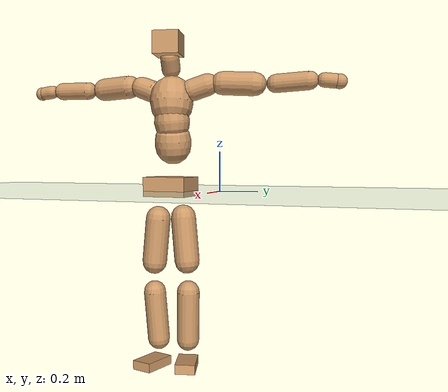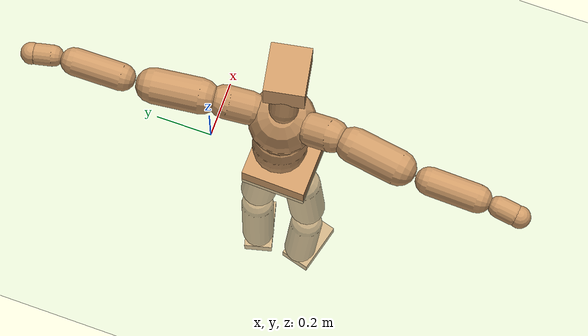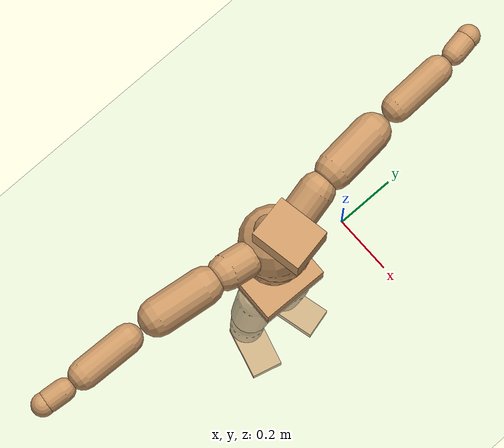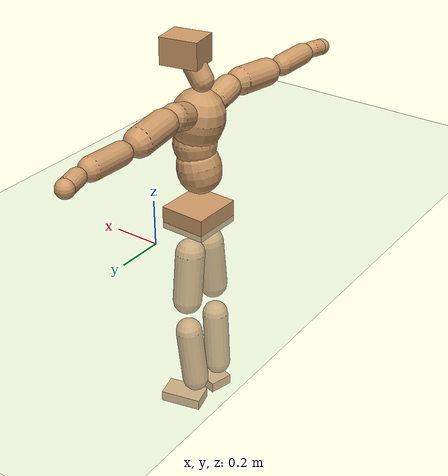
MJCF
<mujoco model="humanoid">
  <compiler coordinate="local" angle="radian"/>
  <default>
    <joint damping="0.0" armature="0.01" stiffness="0.0" limited="true"/>
    <geom conaffinity="1" condim="3" contype="7" margin="0.001" rgba="0.8 0.6 .4 1"/>
  </default>
  <asset>
    <texture type="skybox" builtin="gradient" rgb1=".4 .5 .6" rgb2="0 0 0" width="100" height="100"/>
    <texture builtin="flat" height="1278" mark="cross" markrgb="1 1 1" name="texgeom" random="0.01" rgb1="0.8 0.6 0.4" rgb2="0.8 0.6 0.4" type="cube" width="127"/>
    <texture builtin="checker" height="100" name="texplane" rgb1="0 0 0" rgb2="0.8 0.8 0.8" type="2d" width="100"/>
    <material name="MatPlane" reflectance="0.5" shininess="1" specular="1" texrepeat="60 60" texture="texplane"/>
    <material name="geom" texture="texgeom" texuniform="true"/>
  </asset>
  <worldbody>
    <light cutoff="100" diffuse="1 1 1" dir="-0 0 -1.3" directional="true" exponent="1" pos="0 0 1.3" specular=".1 .1 .1"/>
    <geom conaffinity="1" condim="3" name="floor" pos="0 0 0" rgba="0.8 0.9 0.8 1" size="100 100 .2" type="plane" material="MatPlane"/>
    <body name="Pelvis" pos="-0.0037 -0.2757 0.0285">
      <freejoint name="Pelvis"/>
      <geom type="box" contype="1" conaffinity="1" density="500" pos="-0.0112 0.0003 -0.0086" size="0.1036 0.1148 0.051" quat="0.9999 0.0000 0.0000 -0.0128" name="Pelvis"/>
      <body name="L_Hip" pos="-0.0171 0.0618 -0.0917">
        <joint name="L_Hip_x" type="hinge" pos="0 0 0" axis="1 0 0" stiffness="800" damping="80" armature="0.02" range="-180.0000 180.0000"/>
        <joint name="L_Hip_y" type="hinge" pos="0 0 0" axis="0 1 0" stiffness="800" damping="80" armature="0.02" range="-180.0000 180.0000"/>
        <joint name="L_Hip_z" type="hinge" pos="0 0 0" axis="0 0 1" stiffness="800" damping="80" armature="0.02" range="-180.0000 180.0000"/>
        <geom type="capsule" contype="1" conaffinity="1" density="500" fromto="0.0007 0.0073 -0.0778 0.0027 0.0293 -0.3113" size="0.0657" name="L_Hip"/>
        <body name="L_Knee" pos="0.0034 0.0366 -0.3891">
          <joint name="L_Knee_x" type="hinge" pos="0 0 0" axis="1 0 0" stiffness="800" damping="80" armature="0.02" range="-180.0000 180.0000"/>
          <joint name="L_Knee_y" type="hinge" pos="0 0 0" axis="0 1 0" stiffness="800" damping="80" armature="0.02" range="-180.0000 180.0000"/>
          <joint name="L_Knee_z" type="hinge" pos="0 0 0" axis="0 0 1" stiffness="800" damping="80" armature="0.02" range="-180.0000 180.0000"/>
          <geom type="capsule" contype="1" conaffinity="1" density="500" fromto="-0.0089 -0.0036 -0.0884 -0.0355 -0.0145 -0.3536" size="0.06" name="L_Knee"/>
          <body name="L_Ankle" pos="-0.0444 -0.0181 -0.442">
            <joint name="L_Ankle_x" type="hinge" pos="0 0 0" axis="1 0 0" stiffness="800" damping="80" armature="0.02" range="-180.0000 180.0000"/>
            <joint name="L_Ankle_y" type="hinge" pos="0 0 0" axis="0 1 0" stiffness="800" damping="80" armature="0.02" range="-180.0000 180.0000"/>
            <joint name="L_Ankle_z" type="hinge" pos="0 0 0" axis="0 0 1" stiffness="800" damping="80" armature="0.02" range="-180.0000 180.0000"/>
            <geom type="box" contype="1" conaffinity="1" density="500" pos="0.0649 0.0165 -0.0311" size="0.0937 0.0529 0.0253" quat="0.9923 0.0000 0.0000 0.1239" name="L_Ankle"/>
            <body name="L_Toe" pos="0.1298 0.0329 -0.0621">
              <joint name="L_Toe_x" type="hinge" pos="0 0 0" axis="1 0 0" stiffness="500" damping="50" armature="0.02" range="-180.0000 180.0000"/>
              <joint name="L_Toe_y" type="hinge" pos="0 0 0" axis="0 1 0" stiffness="500" damping="50" armature="0.02" range="-180.0000 180.0000"/>
              <joint name="L_Toe_z" type="hinge" pos="0 0 0" axis="0 0 1" stiffness="500" damping="50" armature="0.02" range="-180.0000 180.0000"/>
              <geom type="box" contype="1" conaffinity="1" density="500" pos="0.0000 0.0000 0.0313" size="0.0011 0.0026 0.0013" quat="0.9916 0.0000 0.0000 0.1291" name="L_Toe"/>
            </body>
          </body>
        </body>
      </body>
      <body name="R_Hip" pos="-0.0106 -0.0652 -0.1019">
        <joint name="R_Hip_x" type="hinge" pos="0 0 0" axis="1 0 0" stiffness="800" damping="80" armature="0.02" range="-180.0000 180.0000"/>
        <joint name="R_Hip_y" type="hinge" pos="0 0 0" axis="0 1 0" stiffness="800" damping="80" armature="0.02" range="-180.0000 180.0000"/>
        <joint name="R_Hip_z" type="hinge" pos="0 0 0" axis="0 0 1" stiffness="800" damping="80" armature="0.02" range="-180.0000 180.0000"/>
        <geom type="capsule" contype="1" conaffinity="1" density="500" fromto="-0.0019 -0.0080 -0.0786 -0.0076 -0.0319 -0.3145" size="0.0656" name="R_Hip"/>
        <body name="R_Knee" pos="-0.0095 -0.0398 -0.3932">
          <joint name="R_Knee_x" type="hinge" pos="0 0 0" axis="1 0 0" stiffness="800" damping="80" armature="0.02" range="-180.0000 180.0000"/>
          <joint name="R_Knee_y" type="hinge" pos="0 0 0" axis="0 1 0" stiffness="800" damping="80" armature="0.02" range="-180.0000 180.0000"/>
          <joint name="R_Knee_z" type="hinge" pos="0 0 0" axis="0 0 1" stiffness="800" damping="80" armature="0.02" range="-180.0000 180.0000"/>
          <geom type="capsule" contype="1" conaffinity="1" density="500" fromto="-0.0080 0.0045 -0.0876 -0.0319 0.0179 -0.3503" size="0.0595" name="R_Knee"/>
          <body name="R_Ankle" pos="-0.0399 0.0224 -0.4379">
            <joint name="R_Ankle_x" type="hinge" pos="0 0 0" axis="1 0 0" stiffness="800" damping="80" armature="0.02" range="-180.0000 180.0000"/>
            <joint name="R_Ankle_y" type="hinge" pos="0 0 0" axis="0 1 0" stiffness="800" damping="80" armature="0.02" range="-180.0000 180.0000"/>
            <joint name="R_Ankle_z" type="hinge" pos="0 0 0" axis="0 0 1" stiffness="800" damping="80" armature="0.02" range="-180.0000 180.0000"/>
            <geom type="box" contype="1" conaffinity="1" density="500" pos="0.0692 -0.0184 -0.0322" size="0.0949 0.055 0.0244" quat="0.9915 0.0000 0.0000 -0.1298" name="R_Ankle"/>
            <body name="R_Toe" pos="0.1385 -0.0369 -0.0645">
              <joint name="R_Toe_x" type="hinge" pos="0 0 0" axis="1 0 0" stiffness="500" damping="50" armature="0.02" range="-180.0000 180.0000"/>
              <joint name="R_Toe_y" type="hinge" pos="0 0 0" axis="0 1 0" stiffness="500" damping="50" armature="0.02" range="-180.0000 180.0000"/>
              <joint name="R_Toe_z" type="hinge" pos="0 0 0" axis="0 0 1" stiffness="500" damping="50" armature="0.02" range="-180.0000 180.0000"/>
              <geom type="box" contype="1" conaffinity="1" density="500" pos="0.0000 0.0000 0.0341" size="0.0012 0.0027 0.0013" quat="0.9926 0.0000 0.0000 -0.1214" name="R_Toe"/>
            </body>
          </body>
        </body>
      </body>
      <body name="Torso" pos="-0.0394 0.0051 0.1422">
        <joint name="Torso_x" type="hinge" pos="0 0 0" axis="1 0 0" stiffness="1000" damping="100" armature="0.02" range="-180.0000 180.0000"/>
        <joint name="Torso_y" type="hinge" pos="0 0 0" axis="0 1 0" stiffness="1000" damping="100" armature="0.02" range="-180.0000 180.0000"/>
        <joint name="Torso_z" type="hinge" pos="0 0 0" axis="0 0 1" stiffness="1000" damping="100" armature="0.02" range="-180.0000 180.0000"/>
        <geom type="capsule" contype="1" conaffinity="1" density="500" fromto="0.0196 0.0038 0.0942 0.0131 0.0025 0.0628" size="0.0953" name="Torso"/>
        <body name="Spine" pos="0.0327 0.0063 0.1569">
          <joint name="Spine_x" type="hinge" pos="0 0 0" axis="1 0 0" stiffness="1000" damping="100" armature="0.02" range="-180.0000 180.0000"/>
          <joint name="Spine_y" type="hinge" pos="0 0 0" axis="0 1 0" stiffness="1000" damping="100" armature="0.02" range="-180.0000 180.0000"/>
          <joint name="Spine_z" type="hinge" pos="0 0 0" axis="0 0 1" stiffness="1000" damping="100" armature="0.02" range="-180.0000 180.0000"/>
          <geom type="capsule" contype="1" conaffinity="1" density="500" fromto="0.0039 -0.0018 0.0381 0.0026 -0.0012 0.0254" size="0.0932" name="Spine"/>
          <body name="Chest" pos="0.0065 -0.003 0.0634">
            <joint name="Chest_x" type="hinge" pos="0 0 0" axis="1 0 0" stiffness="1000" damping="100" armature="0.02" range="-180.0000 180.0000"/>
            <joint name="Chest_y" type="hinge" pos="0 0 0" axis="0 1 0" stiffness="1000" damping="100" armature="0.02" range="-180.0000 180.0000"/>
            <joint name="Chest_z" type="hinge" pos="0 0 0" axis="0 0 1" stiffness="1000" damping="100" armature="0.02" range="-180.0000 180.0000"/>
            <geom type="capsule" contype="1" conaffinity="1" density="500" fromto="-0.0176 -0.0052 0.0944 -0.0117 -0.0035 0.0629" size="0.1141" name="Chest"/>
            <body name="Neck" pos="-0.0403 -0.0156 0.2275">
              <joint name="Neck_x" type="hinge" pos="0 0 0" axis="1 0 0" stiffness="500" damping="50" armature="0.02" range="-180.0000 180.0000"/>
              <joint name="Neck_y" type="hinge" pos="0 0 0" axis="0 1 0" stiffness="500" damping="50" armature="0.02" range="-180.0000 180.0000"/>
              <joint name="Neck_z" type="hinge" pos="0 0 0" axis="0 0 1" stiffness="500" damping="50" armature="0.02" range="-180.0000 180.0000"/>
              <geom type="capsule" contype="1" conaffinity="1" density="500" fromto="0.0107 0.0016 0.0179 0.0427 0.0065 0.0717" size="0.0493" name="Neck"/>
              <body name="Head" pos="0.0533 0.0081 0.0896">
                <joint name="Head_x" type="hinge" pos="0 0 0" axis="1 0 0" stiffness="500" damping="50" armature="0.02" range="-180.0000 180.0000"/>
                <joint name="Head_y" type="hinge" pos="0 0 0" axis="0 1 0" stiffness="500" damping="50" armature="0.02" range="-180.0000 180.0000"/>
                <joint name="Head_z" type="hinge" pos="0 0 0" axis="0 0 1" stiffness="500" damping="50" armature="0.02" range="-180.0000 180.0000"/>
                <geom type="box" contype="1" conaffinity="1" density="500" pos="0.0277 0.0051 0.0458" size="0.0832 0.0679 0.0575" quat="0.9959 0.0000 0.0000 0.0902" name="Head"/>
              </body>
            </body>
            <body name="L_Thorax" pos="-0.022 0.0783 0.123">
              <joint name="L_Thorax_x" type="hinge" pos="0 0 0" axis="1 0 0" stiffness="500" damping="50" armature="0.02" range="-180.0000 180.0000"/>
              <joint name="L_Thorax_y" type="hinge" pos="0 0 0" axis="0 1 0" stiffness="500" damping="50" armature="0.02" range="-180.0000 180.0000"/>
              <joint name="L_Thorax_z" type="hinge" pos="0 0 0" axis="0 0 1" stiffness="500" damping="50" armature="0.02" range="-180.0000 180.0000"/>
              <geom type="capsule" contype="1" conaffinity="1" density="500" fromto="-0.0051 0.0263 0.0087 -0.0203 0.1053 0.0349" size="0.0577" name="L_Thorax"/>
              <body name="L_Shoulder" pos="-0.0254 0.1317 0.0436">
                <joint name="L_Shoulder_x" type="hinge" pos="0 0 0" axis="1 0 0" stiffness="500" damping="50" armature="0.02" range="-720.0000 720.0000"/>
                <joint name="L_Shoulder_y" type="hinge" pos="0 0 0" axis="0 1 0" stiffness="500" damping="50" armature="0.02" range="-720.0000 720.0000"/>
                <joint name="L_Shoulder_z" type="hinge" pos="0 0 0" axis="0 0 1" stiffness="500" damping="50" armature="0.02" range="-720.0000 720.0000"/>
                <geom type="capsule" contype="1" conaffinity="1" density="500" fromto="-0.0051 0.0541 -0.0032 -0.0206 0.2164 -0.0129" size="0.0607" name="L_Shoulder"/>
                <body name="L_Elbow" pos="-0.0257 0.2705 -0.0161">
                  <joint name="L_Elbow_x" type="hinge" pos="0 0 0" axis="1 0 0" stiffness="500" damping="50" armature="0.02" range="-720.0000 720.0000"/>
                  <joint name="L_Elbow_y" type="hinge" pos="0 0 0" axis="0 1 0" stiffness="500" damping="50" armature="0.02" range="-720.0000 720.0000"/>
                  <joint name="L_Elbow_z" type="hinge" pos="0 0 0" axis="0 0 1" stiffness="500" damping="50" armature="0.02" range="-720.0000 720.0000"/>
                  <geom type="capsule" contype="1" conaffinity="1" density="500" fromto="-0.0015 0.0551 0.0025 -0.0059 0.2206 0.0102" size="0.047" name="L_Elbow"/>
                  <body name="L_Wrist" pos="-0.0074 0.2757 0.0127">
                    <joint name="L_Wrist_x" type="hinge" pos="0 0 0" axis="1 0 0" stiffness="300" damping="30" armature="0.02" range="-180.0000 180.0000"/>
                    <joint name="L_Wrist_y" type="hinge" pos="0 0 0" axis="0 1 0" stiffness="300" damping="30" armature="0.02" range="-180.0000 180.0000"/>
                    <joint name="L_Wrist_z" type="hinge" pos="0 0 0" axis="0 0 1" stiffness="300" damping="30" armature="0.02" range="-180.0000 180.0000"/>
                    <geom type="capsule" contype="1" conaffinity="1" density="500" fromto="-0.0032 0.0180 -0.0022 -0.0129 0.0721 -0.0087" size="0.0362" name="L_Wrist"/>
                    <body name="L_Hand" pos="-0.0161 0.0901 -0.0109">
                      <joint name="L_Hand_x" type="hinge" pos="0 0 0" axis="1 0 0" stiffness="300" damping="30" armature="0.02" range="-180.0000 180.0000"/>
                      <joint name="L_Hand_y" type="hinge" pos="0 0 0" axis="0 1 0" stiffness="300" damping="30" armature="0.02" range="-180.0000 180.0000"/>
                      <joint name="L_Hand_z" type="hinge" pos="0 0 0" axis="0 0 1" stiffness="300" damping="30" armature="0.02" range="-180.0000 180.0000"/>
                      <geom type="sphere" contype="1" conaffinity="1" density="500" size="0.0373" pos="0.0000 0.0000 0.0000" name="L_Hand"/>
                    </body>
                  </body>
                </body>
              </body>
            </body>
            <body name="R_Thorax" pos="-0.0258 -0.0887 0.1213">
              <joint name="R_Thorax_x" type="hinge" pos="0 0 0" axis="1 0 0" stiffness="500" damping="50" armature="0.02" range="-180.0000 180.0000"/>
              <joint name="R_Thorax_y" type="hinge" pos="0 0 0" axis="0 1 0" stiffness="500" damping="50" armature="0.02" range="-180.0000 180.0000"/>
              <joint name="R_Thorax_z" type="hinge" pos="0 0 0" axis="0 0 1" stiffness="500" damping="50" armature="0.02" range="-180.0000 180.0000"/>
              <geom type="capsule" contype="1" conaffinity="1" density="500" fromto="-0.0023 -0.0239 0.0089 -0.0092 -0.0954 0.0355" size="0.0569" name="R_Thorax"/>
              <body name="R_Shoulder" pos="-0.0115 -0.1193 0.0443">
                <joint name="R_Shoulder_x" type="hinge" pos="0 0 0" axis="1 0 0" stiffness="500" damping="50" armature="0.02" range="-720.0000 720.0000"/>
                <joint name="R_Shoulder_y" type="hinge" pos="0 0 0" axis="0 1 0" stiffness="500" damping="50" armature="0.02" range="-720.0000 720.0000"/>
                <joint name="R_Shoulder_z" type="hinge" pos="0 0 0" axis="0 0 1" stiffness="500" damping="50" armature="0.02" range="-720.0000 720.0000"/>
                <geom type="capsule" contype="1" conaffinity="1" density="500" fromto="-0.0074 -0.0540 -0.0020 -0.0297 -0.2160 -0.0079" size="0.0607" name="R_Shoulder"/>
                <body name="R_Elbow" pos="-0.0372 -0.27 -0.0099">
                  <joint name="R_Elbow_x" type="hinge" pos="0 0 0" axis="1 0 0" stiffness="500" damping="50" armature="0.02" range="-720.0000 720.0000"/>
                  <joint name="R_Elbow_y" type="hinge" pos="0 0 0" axis="0 1 0" stiffness="500" damping="50" armature="0.02" range="-720.0000 720.0000"/>
                  <joint name="R_Elbow_z" type="hinge" pos="0 0 0" axis="0 0 1" stiffness="500" damping="50" armature="0.02" range="-720.0000 720.0000"/>
                  <geom type="capsule" contype="1" conaffinity="1" density="500" fromto="-0.0016 -0.0553 0.0011 -0.0065 -0.2213 0.0045" size="0.0477" name="R_Elbow"/>
                  <body name="R_Wrist" pos="-0.0081 -0.2766 0.0057">
                    <joint name="R_Wrist_x" type="hinge" pos="0 0 0" axis="1 0 0" stiffness="300" damping="30" armature="0.02" range="-180.0000 180.0000"/>
                    <joint name="R_Wrist_y" type="hinge" pos="0 0 0" axis="0 1 0" stiffness="300" damping="30" armature="0.02" range="-180.0000 180.0000"/>
                    <joint name="R_Wrist_z" type="hinge" pos="0 0 0" axis="0 0 1" stiffness="300" damping="30" armature="0.02" range="-180.0000 180.0000"/>
                    <geom type="capsule" contype="1" conaffinity="1" density="500" fromto="-0.0020 -0.0183 -0.0018 -0.0080 -0.0732 -0.0072" size="0.0366" name="R_Wrist"/>
                    <body name="R_Hand" pos="-0.01 -0.0915 -0.0089">
                      <joint name="R_Hand_x" type="hinge" pos="0 0 0" axis="1 0 0" stiffness="300" damping="30" armature="0.02" range="-180.0000 180.0000"/>
                      <joint name="R_Hand_y" type="hinge" pos="0 0 0" axis="0 1 0" stiffness="300" damping="30" armature="0.02" range="-180.0000 180.0000"/>
                      <joint name="R_Hand_z" type="hinge" pos="0 0 0" axis="0 0 1" stiffness="300" damping="30" armature="0.02" range="-180.0000 180.0000"/>
                      <geom type="sphere" contype="1" conaffinity="1" density="500" size="0.0374" pos="0.0000 0.0000 0.0000" name="R_Hand"/>
                    </body>
                  </body>
                </body>
              </body>
            </body>
          </body>
        </body>
      </body>
    </body>
  </worldbody>
  <actuator>
    <motor name="L_Hip_x" joint="L_Hip_x" gear="500"/>
    <motor name="L_Hip_y" joint="L_Hip_y" gear="500"/>
    <motor name="L_Hip_z" joint="L_Hip_z" gear="500"/>
    <motor name="L_Knee_x" joint="L_Knee_x" gear="500"/>
    <motor name="L_Knee_y" joint="L_Knee_y" gear="500"/>
    <motor name="L_Knee_z" joint="L_Knee_z" gear="500"/>
    <motor name="L_Ankle_x" joint="L_Ankle_x" gear="500"/>
    <motor name="L_Ankle_y" joint="L_Ankle_y" gear="500"/>
    <motor name="L_Ankle_z" joint="L_Ankle_z" gear="500"/>
    <motor name="L_Toe_x" joint="L_Toe_x" gear="500"/>
    <motor name="L_Toe_y" joint="L_Toe_y" gear="500"/>
    <motor name="L_Toe_z" joint="L_Toe_z" gear="500"/>
    <motor name="R_Hip_x" joint="R_Hip_x" gear="500"/>
    <motor name="R_Hip_y" joint="R_Hip_y" gear="500"/>
    <motor name="R_Hip_z" joint="R_Hip_z" gear="500"/>
    <motor name="R_Knee_x" joint="R_Knee_x" gear="500"/>
    <motor name="R_Knee_y" joint="R_Knee_y" gear="500"/>
    <motor name="R_Knee_z" joint="R_Knee_z" gear="500"/>
    <motor name="R_Ankle_x" joint="R_Ankle_x" gear="500"/>
    <motor name="R_Ankle_y" joint="R_Ankle_y" gear="500"/>
    <motor name="R_Ankle_z" joint="R_Ankle_z" gear="500"/>
    <motor name="R_Toe_x" joint="R_Toe_x" gear="500"/>
    <motor name="R_Toe_y" joint="R_Toe_y" gear="500"/>
    <motor name="R_Toe_z" joint="R_Toe_z" gear="500"/>
    <motor name="Torso_x" joint="Torso_x" gear="500"/>
    <motor name="Torso_y" joint="Torso_y" gear="500"/>
    <motor name="Torso_z" joint="Torso_z" gear="500"/>
    <motor name="Spine_x" joint="Spine_x" gear="500"/>
    <motor name="Spine_y" joint="Spine_y" gear="500"/>
    <motor name="Spine_z" joint="Spine_z" gear="500"/>
    <motor name="Chest_x" joint="Chest_x" gear="500"/>
    <motor name="Chest_y" joint="Chest_y" gear="500"/>
    <motor name="Chest_z" joint="Chest_z" gear="500"/>
    <motor name="Neck_x" joint="Neck_x" gear="500"/>
    <motor name="Neck_y" joint="Neck_y" gear="500"/>
    <motor name="Neck_z" joint="Neck_z" gear="500"/>
    <motor name="Head_x" joint="Head_x" gear="500"/>
    <motor name="Head_y" joint="Head_y" gear="500"/>
    <motor name="Head_z" joint="Head_z" gear="500"/>
    <motor name="L_Thorax_x" joint="L_Thorax_x" gear="500"/>
    <motor name="L_Thorax_y" joint="L_Thorax_y" gear="500"/>
    <motor name="L_Thorax_z" joint="L_Thorax_z" gear="500"/>
    <motor name="L_Shoulder_x" joint="L_Shoulder_x" gear="500"/>
    <motor name="L_Shoulder_y" joint="L_Shoulder_y" gear="500"/>
    <motor name="L_Shoulder_z" joint="L_Shoulder_z" gear="500"/>
    <motor name="L_Elbow_x" joint="L_Elbow_x" gear="500"/>
    <motor name="L_Elbow_y" joint="L_Elbow_y" gear="500"/>
    <motor name="L_Elbow_z" joint="L_Elbow_z" gear="500"/>
    <motor name="L_Wrist_x" joint="L_Wrist_x" gear="500"/>
    <motor name="L_Wrist_y" joint="L_Wrist_y" gear="500"/>
    <motor name="L_Wrist_z" joint="L_Wrist_z" gear="500"/>
    <motor name="L_Hand_x" joint="L_Hand_x" gear="500"/>
    <motor name="L_Hand_y" joint="L_Hand_y" gear="500"/>
    <motor name="L_Hand_z" joint="L_Hand_z" gear="500"/>
    <motor name="R_Thorax_x" joint="R_Thorax_x" gear="500"/>
    <motor name="R_Thorax_y" joint="R_Thorax_y" gear="500"/>
    <motor name="R_Thorax_z" joint="R_Thorax_z" gear="500"/>
    <motor name="R_Shoulder_x" joint="R_Shoulder_x" gear="500"/>
    <motor name="R_Shoulder_y" joint="R_Shoulder_y" gear="500"/>
    <motor name="R_Shoulder_z" joint="R_Shoulder_z" gear="500"/>
    <motor name="R_Elbow_x" joint="R_Elbow_x" gear="500"/>
    <motor name="R_Elbow_y" joint="R_Elbow_y" gear="500"/>
    <motor name="R_Elbow_z" joint="R_Elbow_z" gear="500"/>
    <motor name="R_Wrist_x" joint="R_Wrist_x" gear="500"/>
    <motor name="R_Wrist_y" joint="R_Wrist_y" gear="500"/>
    <motor name="R_Wrist_z" joint="R_Wrist_z" gear="500"/>
    <motor name="R_Hand_x" joint="R_Hand_x" gear="500"/>
    <motor name="R_Hand_y" joint="R_Hand_y" gear="500"/>
    <motor name="R_Hand_z" joint="R_Hand_z" gear="500"/>
  </actuator>
  <contact>
    <exclude body1="Torso" body2="Chest"/>
    <exclude body1="Head" body2="Chest"/>
    <exclude body1="R_Knee" body2="R_Toe"/>
    <exclude body1="R_Knee" body2="L_Ankle"/>
    <exclude body1="R_Knee" body2="L_Toe"/>
    <exclude body1="L_Knee" body2="L_Toe"/>
    <exclude body1="L_Knee" body2="R_Ankle"/>
    <exclude body1="L_Knee" body2="R_Toe"/>
    <exclude body1="L_Shoulder" body2="Chest"/>
    <exclude body1="R_Shoulder" body2="Chest"/>
  </contact>
  <sensor/>
  <size njmax="700" nconmax="700"/>
</mujoco>
